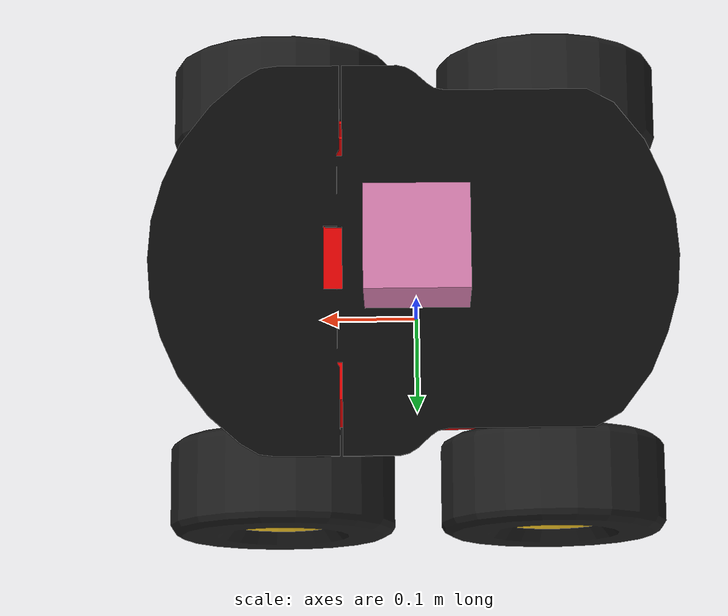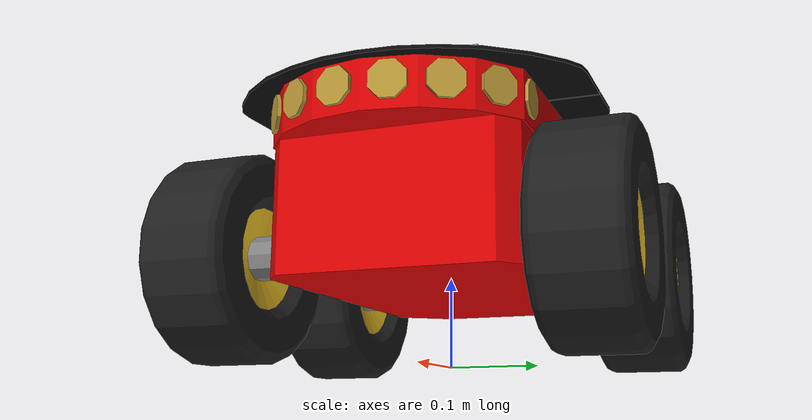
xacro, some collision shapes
<?xml version="1.0"?>

<robot xmlns:xacro="http://ros.org/wiki/xacro" name="pioneer3at">
<xacro:include filename="$(find amr_robots_description)/urdf/materials.xacro" />

<!-- Chassis -->
	<link name="base_link">
		<inertial>
			<mass value="21.5"/> <!-- P3AT 18.6kg plus three batteries @ 2.4kg each  minus four wheels @ 1.4 kg ea and top plate @ 0.1 kg-->
			<origin xyz="0 -0.1 0.177"/>
			<inertia ixx="0.3338" ixy="0.0"     ixz="0.0"
				              iyy="0.4783"  iyz="0.0"
				                            izz="0.3338"/>
		</inertial>
		<visual name="base_visual">
			<origin xyz="0 0 0.177" rpy="0 0 0"/>
			<geometry name="pioneer_geom">
				<mesh filename="package://amr_robots_description/meshes/p3at_meshes/chassis.dae"/>
			</geometry>
			<material name="ChassisRed">
				<color rgba="0.851 0.0 0.0 1.0"/>
			</material>
		</visual>
		<collision>
			<origin xyz="0 0 0.177" rpy="0 0 0"/>
				<geometry>
					<mesh filename="package://amr_robots_description/meshes/p3at_meshes/chassis.dae"/>
				</geometry>
		</collision>
	</link>
	<gazebo reference="base_link">
      		<material>
          		<ambient>1 0 0 0</ambient>
          		<diffuse>1 0 0 0</diffuse>
          		<specular>0 0 0 1</specular>
          		<emissive>0 0 0 1</emissive>
		</material>
	</gazebo>

	<joint name="imu_joint" type="fixed">
		<axis xyz="1 0 0"/>
		<origin xyz="0 0 0.19"/>
	    	<parent link="base_link"/>
	    	<child link="imu_link"/>
	</joint>

	<joint name="basefootprint_joint" type="fixed">
	    	<axis xyz="1 0 0"/>
	    	<origin xyz="0 0 0.19"/>
	    	<parent link="base_link"/>
	    	<child link="base_footprint"/>
	</joint>

	<link name="base_footprint">
		<visual>
	    		<origin rpy="0 0 0" xyz="0 0 0"/>
	   		<geometry>
	      		<box size="0.001 0.001 0.001"/>
	   		</geometry>
	  	</visual>
	</link>

	<link name="imu_link">
	  	<inertial>
		    	<mass value="0.001"/>
		    	<origin rpy="0 0 0" xyz="0 0 0"/>
		    	<inertia ixx="0.0001" ixy="0" ixz="0" iyy="0.000001" iyz="0" izz="0.0001"/>
	 	</inertial>
	  	<visual>
	    		<origin rpy="0 0 0" xyz="0 0 0"/>
	    		<geometry>
	      			<box size="0.001 0.001 0.001"/>
	    		</geometry>
	 	</visual>
	  	<collision>
	    		<origin rpy="0 0 0" xyz="0 0 0"/>
	    		<geometry>
	      			<box size=".001 .001 .001"/>
	    		</geometry>
	  	</collision>
		</link>

<!-- Top -->
	<link name="top_plate">
		<inertial>
			<mass value="0.1"/>
			<origin xyz="-0.025 0 -0.223"/>
			<inertia ixx="1.0" ixy="0.0" ixz="0.0"
				 iyy="1.0" iyz="0.0"
 				izz="1.0"/>
		</inertial>
		<visual name="base_visual">
			<origin xyz="0 0 0" rpy="0 0 0"/>
			<geometry name="pioneer_geom">
				<mesh filename="package://amr_robots_description/meshes/p3at_meshes/top.dae"/>
			</geometry>
			<material name="TopBlack">
					<color rgba="0.038 0.038 0.038 1.0"/>
			</material>
		</visual>
		<collision>
			<origin xyz="0 0 0" rpy="0 0 0"/>
			<geometry>
				<box size="0.1 0.1 0.1"/>
			</geometry>
		</collision>
	</link>
	<gazebo reference="top_plate">
      		<material>
          		<ambient>1 0 0 0</ambient>
          		<diffuse>1 0 0 0</diffuse>
          		<specular>0 0 0 1</specular>
          		<emissive>0 0 0 1</emissive>
		</material>
	</gazebo>

	<joint name="base_top_joint" type="fixed">
		<origin xyz="0.003 0 0.274" rpy="0 0 0"/>
		<parent link="base_link"/>
		<child link="top_plate"/>
	</joint>
<!-- Front + Back Sonar -->
	<link name="front_sonar">
		<inertial>
			<mass value="0.1"/>
			<origin xyz="0 0 0"/>
			<inertia ixx="1.0" ixy="0.0" ixz="0.0"
				 iyy="1.0" iyz="0.0" izz="1.0"/>
		</inertial>
		<visual name="base_visual">
			<origin xyz="0 0 0" rpy="0 0 0"/>
			<geometry name="pioneer_geom">
				<mesh filename="package://amr_robots_description/meshes/p3at_meshes/front_sonar.dae"/>
			</geometry>
			<material name="SonarYellow">
				<color rgba="0.715 0.583 0.210 1.0"/>
			</material>
		</visual>
		<collision>
			<origin xyz="0 0 0" rpy="0 0 0"/>
			<geometry>
				<box size="0.1 0.1 0.1"/>
			</geometry>
		</collision>
	</link>
	<gazebo reference="front_sonar">
		<material>
          		<ambient>1 0 0 0</ambient>
          		<diffuse>1 0 0 0</diffuse>
          		<specular>0 0 0 1</specular>
          		<emissive>0 0 0 1</emissive>
		</material>
	</gazebo>

	<joint name="base_front_joint" type="fixed">
		<origin xyz="0.193 0 0.25" rpy="0 0 0"/>
		<parent link="base_link"/>
		<child link="front_sonar"/>
	</joint>

	<link name="back_sonar">
		<inertial>
			<mass value="0.1"/>
			<origin xyz="0 0 0"/>
			<inertia ixx="1.0" ixy="0.0" ixz="0.0"
				 iyy="1.0" iyz="0.0" izz="1.0"/>
		</inertial>
		<visual name="base_visual">
			<origin xyz="0 0 0" rpy="0 0 0"/>
			<geometry name="pioneer_geom">
				<mesh filename="package://amr_robots_description/meshes/p3at_meshes/back_sonar.dae"/>
			</geometry>
			<material name="SonarYellow">
				<color rgba="0.715 0.583 0.210 1.0"/>
			</material>
		</visual>
		<collision>
			<origin xyz="0 0 0" rpy="0 0 0"/>
			<geometry>
				<box size="0.1 0.1 0.1"/>
			</geometry>
		</collision>
	</link>
	<gazebo reference="back_sonar">
		<material>
          		<ambient>1 0 0 0</ambient>
          		<diffuse>1 0 0 0</diffuse>
          		<specular>0 0 0 1</specular>
          		<emissive>0 0 0 1</emissive>
		</material>
	</gazebo>

	<joint name="base_back_joint" type="fixed">
		<origin xyz="-0.187 0 0.247" rpy="0 0 0"/>
		<parent link="base_link"/>
		<child link="back_sonar"/>
	</joint>

	<joint name="hokuyo_joint" type="fixed">
		<axis xyz="0 1 0" />
		<origin xyz="0 0 0.31" rpy="0 0 0"/>
		<parent link="base_link"/>
		<child link="hokuyo_link"/>
	</joint>

	<!-- Hokuyo Laser -->
	<link name="hokuyo_link">
		<collision>
			<origin xyz="0 0 0" rpy="0 0 0"/>
	      		<geometry>
	    			<box size="0.1 0.1 0.1"/>
	      		</geometry>
	    	</collision>
		<visual>
			<origin xyz="0 0 0" rpy="0 0 0"/>
		      	<geometry>
				<mesh filename="package://amr_robots_description/meshes/p3at_meshes/hokuyo.dae"/>
		      	</geometry>
		</visual>
		<inertial>
	      		<mass value="1e-5" />
	      		<origin xyz="0 0 0" rpy="0 0 0"/>
	      		<inertia ixx="1e-6" ixy="0" ixz="0" iyy="1e-6" iyz="0" izz="1e-6" />
	    	</inertial>
	  </link>

	<link name="hokuyo_scanLink">
	</link>

	<joint name="hokuyo_scanJoint" type="fixed">
		<axis xyz="0 1 0" />
		<origin xyz="0 0 0.03" rpy="0 0 0"/>
		<parent link="hokuyo_link"/>
		<child link="hokuyo_scanLink"/>
	</joint>

<xacro:macro name="p3at_drive_side" params="side reflect">

  <!-- Front Axles + Wheels + Hubcaps -->
	<link name="p3at_front_${side}_axle">
		<inertial>
			<mass value="0.1"/>
			<origin xyz="0 0 0"/>
			<inertia ixx="1.0" ixy="0.0" ixz="0.0"
				 iyy="1.0" iyz="0.0" izz="1.0"/>
  	 	</inertial>
	<visual name="base_visual">
		<origin xyz="0 0 0" rpy="0 0 0"/>
		<geometry name="pioneer_geom">
			<mesh filename="package://amr_robots_description/meshes/p3at_meshes/axle.dae"/>
		</geometry>
		<material name="AxleGrey">
			<color rgba="0.5 0.5 0.5 1"/>
		</material>
	</visual>
	<collision>
		<origin xyz="0 0 0" rpy="0 0 0"/>
		<geometry>
			<box size="0.1 0.1 0.1"/>
		</geometry>
	</collision>
	</link>
	<gazebo reference="p3at_front_${side}_axle">
		<material>
          		<ambient>1 0 0 0</ambient>
          		<diffuse>1 0 0 0</diffuse>
          		<specular>0 0 0 1</specular>
          		<emissive>0 0 0 1</emissive>
		</material>
	</gazebo>

	<joint name="base_front_${side}_axle_joint" type="fixed">
		<origin xyz="0.135 ${reflect*0.156} 0.111" rpy="0 0 0"/>
		<parent link="base_link"/>
		<child link="p3at_front_${side}_axle"/>
	</joint>

	<link name="p3at_front_${side}_hub">
		<inertial>
			<mass value="0.1"/>
			<origin xyz="0 0 0"/>
			<inertia ixx="1.0" ixy="0.0" ixz="0.0"
				 iyy="1.0" iyz="0.0" izz="1.0"/>
  	 	</inertial>
	<visual name="base_visual">
		<origin xyz="0 0 0" rpy="0 0 0"/>
		<geometry name="pioneer_geom">
			<mesh filename="package://amr_robots_description/meshes/p3at_meshes/${side}_hubcap.dae"/>
		</geometry>
		<material name="HubcapYellow">
			<color rgba="1.0 0.811 0.151 1.0"/>
		</material>
	</visual>
	<collision>
		<origin xyz="0 0 0" rpy="0 0 0"/>
		<geometry>
			<box size="0.1 0.1 0.1"/>
		</geometry>
	</collision>
	</link>
	<gazebo reference="p3at_front_${side}_hub">
		<material>
          		<ambient>1 0 0 0</ambient>
          		<diffuse>1 0 0 0</diffuse>
          		<specular>0 0 0 1</specular>
          		<emissive>0 0 0 1</emissive>
		</material>
	</gazebo>

	<joint name="base_front_${side}_hub_joint" type="fixed">
		<origin xyz="0 ${reflect*0.041} 0" rpy="0 0 0"/>
		<parent link="p3at_front_${side}_axle"/>
		<child link="p3at_front_${side}_hub"/>
	</joint>

	<link name="p3at_front_${side}_wheel">
		<inertial>
			<mass value="1.2"/> <!-- 1.4 kg - axle 0.1 kg - hub 0.1 kg -->
			<origin xyz="0 0 0"/>
			<inertia ixx="0.012411765597" ixy="0" ixz="0"
         iyy="0.015218160428" iyz="0" izz="0.011763977943"/>
      </inertial>
	<visual name="base_visual">
		<origin xyz="0 0 0" rpy="0 0 0"/>
		<geometry name="pioneer_geom">
			<mesh filename="package://amr_robots_description/meshes/p3at_meshes/wheel.dae"/>
		</geometry>
		<material name="WheelBlack">
			<color rgba="0.117 0.117 0.117 1"/>
		</material>
	</visual>
	<collision>
		<origin xyz="0 0 0" rpy="${-3.1415927/2} 0 0"/>
		<geometry>
	    <!--mesh filename="package://amr_robots_description/meshes/p3at_meshes/wheel.dae"/-->
	    <cylinder radius="0.111" length="0.075"/>
		</geometry>
	</collision>
	</link>
	<gazebo reference="p3at_front_${side}_wheel">
		<material>
          		<ambient>1 0 0 0</ambient>
          		<diffuse>1 0 0 0</diffuse>
          		<specular>0 0 0 1</specular>
          		<emissive>0 0 0 1</emissive>
		</material>
	</gazebo>

	<joint name="p3at_front_${side}_wheel_joint" type="continuous">
  	<axis xyz="0 1 0"/>
    <anchor xyz="0 0 0"/>
    <limit effort="100" velocity="100" />
    <joint_properties damping="0.7"/>
		<origin xyz="0 0 0" rpy="0 0 0"/>
		<parent link="p3at_front_${side}_hub"/>
		<child link="p3at_front_${side}_wheel"/>
	</joint>

<!-- Back Axles + Wheels + Hubcaps -->
	<link name="p3at_back_${side}_axle">
		<inertial>
			<mass value="0.1"/>
			<origin xyz="0 0 0"/>
			<inertia ixx="1.0" ixy="0.0" ixz="0.0"
				 iyy="1.0" iyz="0.0" izz="1.0"/>
  	 	</inertial>
	<visual name="base_visual">
		<origin xyz="0 0 0" rpy="0 0 0"/>
		<geometry name="pioneer_geom">
			<mesh filename="package://amr_robots_description/meshes/p3at_meshes/axle.dae"/>
		</geometry>
		<material name="AxleGrey">
			<color rgba="0.5 0.5 0.5 1"/>
		</material>
	</visual>
	<collision>
		<origin xyz="0 0 0" rpy="0 0 0"/>
		<geometry>
			<mesh filename="package://amr_robots_description/meshes/p3at_meshes/axle.dae"/>
		</geometry>
	</collision>
	</link>
	<gazebo reference="p3at_back_${side}_axle">
		<material>
          		<ambient>1 0 0 0</ambient>
          		<diffuse>1 0 0 0</diffuse>
          		<specular>0 0 0 1</specular>
          		<emissive>0 0 0 1</emissive>
		</material>
	</gazebo>

	<joint name="p3at_back_${side}_axle_joint" type="fixed">
		<origin xyz="-0.134 ${reflect*0.156} 0.111" rpy="0 0 0"/>
		<parent link="base_link"/>
		<child link="p3at_back_${side}_axle"/>
	</joint>

	<link name="p3at_back_${side}_hub">
		<inertial>
			<mass value="0.1"/>
			<origin xyz="0 0 0"/>
			<inertia ixx="1.0" ixy="0.0" ixz="0.0"
				 iyy="1.0" iyz="0.0" izz="1.0"/>
  	 	</inertial>
	<visual name="base_visual">
		<origin xyz="0 0 0" rpy="0 0 0"/>
		<geometry name="pioneer_geom">
			<mesh filename="package://amr_robots_description/meshes/p3at_meshes/${side}_hubcap.dae"/>
		</geometry>
		<material name="HubcapYellow"/>
	</visual>
	<collision>
		<origin xyz="0 0 0" rpy="0 0 0"/>
		<geometry>
			<mesh filename="package://amr_robots_description/meshes/p3at_meshes/${side}_hubcap.dae"/>
		</geometry>
	</collision>
	</link>
	<gazebo reference="p3at_back_${side}_hub">
		<material>
          		<ambient>1 0 0 0</ambient>
          		<diffuse>1 0 0 0</diffuse>
          		<specular>0 0 0 1</specular>
          		<emissive>0 0 0 1</emissive>
		</material>
	</gazebo>

	<joint name="p3at_back_${side}_hub_joint" type="fixed">
		<origin xyz="-0 ${reflect*0.041} 0" rpy="0 0 0"/>
		<parent link="p3at_back_${side}_axle"/>
		<child link="p3at_back_${side}_hub"/>
	</joint>

	<link name="p3at_back_${side}_wheel">
		<inertial>
			<mass value="1.2"/>
			<origin xyz="0 0 0"/>
			<inertia ixx="0.012411765597" ixy="0" ixz="0"
                                                      iyy="0.015218160428" iyz="0"
                                                                           izz="0.011763977943"/>
      </inertial>
	<visual name="base_visual">
		<origin xyz="0 0 0" rpy="0 0 0"/>
		<geometry name="pioneer_geom">
			<mesh filename="package://amr_robots_description/meshes/p3at_meshes/wheel.dae"/>
		</geometry>
		<material name="WheelBlack"/>
	</visual>
	<collision>
		<origin xyz="0 0 0" rpy="${-3.1415927/2} 0 0"/>
		<geometry>
	    <!--mesh filename="package://amr_robots_description/meshes/p3at_meshes/wheel.dae"/-->
	    <cylinder radius="0.111" length="0.075"/>
		</geometry>
	</collision>
	</link>
	<gazebo reference="p3at_back_${side}_wheel">
		<material>
          		<ambient>1 0 0 0</ambient>
          		<diffuse>1 0 0 0</diffuse>
          		<specular>0 0 0 1</specular>
          		<emissive>0 0 0 1</emissive>
		</material>
	</gazebo>

	<joint name="p3at_back_${side}_wheel_joint" type="continuous">
	  <axis xyz="0 1 0"/>
    <anchor xyz="0 0 0"/>
    <limit effort="100" velocity="100" />
    <joint_properties damping="0.7"/>
		<origin xyz="0 0 0" rpy="0 0 0"/>
		<parent link="p3at_back_${side}_hub"/>
		<child link="p3at_back_${side}_wheel"/>
	</joint>

  <!-- see http://gazebosim.org/tutorials/?tut=ros_urdf -->

  <gazebo reference="p3at_back_${side}_wheel">

  </gazebo>

</xacro:macro>

<!-- hokuyo -->
  <gazebo reference="hokuyo_scanLink">
    <sensor type="ray" name="head_hokuyo_sensor">
      <pose>0.0 0.0 0.0 0.0 0.0 0.0</pose>
      <visualize>true</visualize>
      <update_rate>40</update_rate>
      <ray>
        <scan>
          <horizontal>
            <samples>720</samples>
            <min_angle>-1.570796</min_angle>
            <max_angle>1.570796</max_angle>
          </horizontal>
        </scan>
        <range>
          <min>0.10</min>
          <max>4.0</max>
          <resolution>0.01</resolution>
        </range>
        <noise>
          <type>gaussian</type>
          <mean>0.0</mean>
          <stddev>0.01</stddev>
        </noise>
      </ray>
      <plugin name="gazebo_ros_head_hokuyo_controller" filename="libgazebo_ros_laser.so">
        <topicName>laserScan</topicName>
        <frameName>hokuyo_scanLink</frameName>
      </plugin>
    </sensor>
  </gazebo>

<xacro:macro name="p3at_gazebo_ext">
<gazebo>
    <plugin name="imu_plugin" filename="libgazebo_ros_imu.so">
        <alwaysOn>true</alwaysOn>
        <bodyName>imu_link</bodyName>
        <topicName>imu_data</topicName>
        <serviceName>imu_service</serviceName>
        <gaussianNoise>10.0</gaussianNoise>
        <updateRate>30.0</updateRate>
    </plugin>
  <plugin name="skid_steer_drive_controller" filename="libgazebo_ros_skid_steer_drive.so">
    <updateRate>100.0</updateRate>
    <robotNamespace>sim_p3at</robotNamespace>
    <leftFrontJoint>p3at_front_left_wheel_joint</leftFrontJoint>
    <rightFrontJoint>p3at_front_right_wheel_joint</rightFrontJoint>
    <leftRearJoint>p3at_back_left_wheel_joint</leftRearJoint>
    <rightRearJoint>p3at_back_right_wheel_joint</rightRearJoint>
    <wheelSeparation>0.4</wheelSeparation>
    <wheelDiameter>0.215</wheelDiameter>
    <robotBaseFrame>base_link</robotBaseFrame>
    <MaxForce>5.0</MaxForce>
    <torque>200</torque>
    <commandTopic>cmd_vel</commandTopic>
    <odometryTopic>odom</odometryTopic>
    <odometryFrame>odom</odometryFrame>
    <broadcastTF>1</broadcastTF>
  </plugin>
  <plugin name="ground_truth" filename="libgazebo_ros_p3d.so">
    <frameName>map</frameName>
    <bodyName>base_link</bodyName>
    <topicName>odom_gt</topicName>
    <gaussianNoise>3.0</gaussianNoise>
    <updateRate>30.0</updateRate>
  </plugin>
</gazebo>

</xacro:macro>

<xacro:p3at_drive_side side="left" reflect="1"/>
<xacro:p3at_drive_side side="right" reflect="-1"/>
<xacro:p3at_gazebo_ext/>

</robot>
